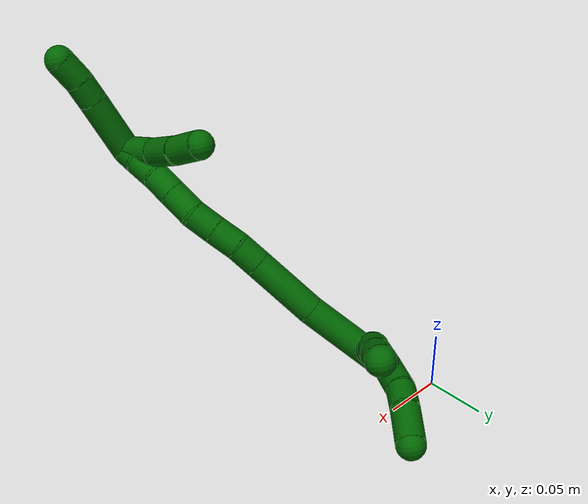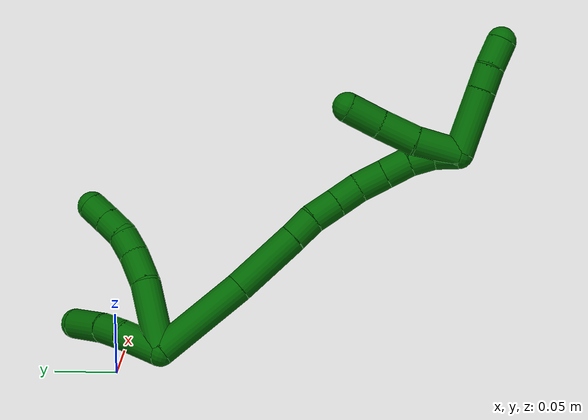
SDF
<sdf version="1.7">
 <world name="default">
  <model name="6">
   <static>0</static>
   <link name="6">
    <collision name="collision-cylinder-e_1_2_8">
     <pose>0.023436 0.002503 0.017914 -0.138827 0.913474 -0.068302</pose>
     <geometry><cylinder><radius>0.0125</radius><length>0.059208</length></cylinder></geometry>
     <surface>
      <friction><ode><mu>1.16</mu><mu2>1.16</mu2><slip1>0</slip1><slip2>0</slip2></ode></friction>
      <contact><ode><kp>1e+06</kp><kd>1</kd><max_vel>0</max_vel><min_depth>0.001</min_depth></ode></contact>
     </surface>
    </collision>
    <visual name="visual-cylinder-e_1_2_8">
     <pose>0.023436 0.002503 0.017914 -0.138827 0.913474 -0.068302</pose>
     <geometry><cylinder><radius>0.0125</radius><length>0.059208</length></cylinder></geometry>
     <material><ambient>0 0.392157 0.003922 1</ambient></material>
    </visual>
    <collision name="collision-cylinder-e_2_8_9">
     <pose>0.059853 0.006663 0.041875 -0.267381 1.12088 -0.168406</pose>
     <geometry><cylinder><radius>0.0125</radius><length>0.028834</length></cylinder></geometry>
     <surface>
      <friction><ode><mu>1.16</mu><mu2>1.16</mu2><slip1>0</slip1><slip2>0</slip2></ode></friction>
      <contact><ode><kp>1e+06</kp><kd>1</kd><max_vel>0</max_vel><min_depth>0.001</min_depth></ode></contact>
     </surface>
    </collision>
    <visual name="visual-cylinder-e_2_8_9">
     <pose>0.059853 0.006663 0.041875 -0.267381 1.12088 -0.168406</pose>
     <geometry><cylinder><radius>0.0125</radius><length>0.028834</length></cylinder></geometry>
     <material><ambient>0 0.392157 0.003922 1</ambient></material>
    </visual>
    <collision name="collision-cylinder-e_3_9_10">
     <pose>0.081287 0.011558 0.052553 -0.610409 0.981405 -0.333528</pose>
     <geometry><cylinder><radius>0.0125</radius><length>0.020333</length></cylinder></geometry>
     <surface>
      <friction><ode><mu>1.16</mu><mu2>1.16</mu2><slip1>0</slip1><slip2>0</slip2></ode></friction>
      <contact><ode><kp>1e+06</kp><kd>1</kd><max_vel>0</max_vel><min_depth>0.001</min_depth></ode></contact>
     </surface>
    </collision>
    <visual name="visual-cylinder-e_3_9_10">
     <pose>0.081287 0.011558 0.052553 -0.610409 0.981405 -0.333528</pose>
     <geometry><cylinder><radius>0.0125</radius><length>0.020333</length></cylinder></geometry>
     <material><ambient>0 0.392157 0.003922 1</ambient></material>
    </visual>
    <collision name="collision-cylinder-e_4_10_11">
     <pose>0.099175 0.018083 0.058629 -1.15633 1.20737 -0.845666</pose>
     <geometry><cylinder><radius>0.0125</radius><length>0.020192</length></cylinder></geometry>
     <surface>
      <friction><ode><mu>1.16</mu><mu2>1.16</mu2><slip1>0</slip1><slip2>0</slip2></ode></friction>
      <contact><ode><kp>1e+06</kp><kd>1</kd><max_vel>0</max_vel><min_depth>0.001</min_depth></ode></contact>
     </surface>
    </collision>
    <visual name="visual-cylinder-e_4_10_11">
     <pose>0.099175 0.018083 0.058629 -1.15633 1.20737 -0.845666</pose>
     <geometry><cylinder><radius>0.0125</radius><length>0.020192</length></cylinder></geometry>
     <material><ambient>0 0.392157 0.003922 1</ambient></material>
    </visual>
    <collision name="collision-cylinder-e_5_11_6">
     <pose>0.118541 0.025139 0.061492 -1.21114 1.18534 -0.872557</pose>
     <geometry><cylinder><radius>0.0125</radius><length>0.021433</length></cylinder></geometry>
     <surface>
      <friction><ode><mu>1.16</mu><mu2>1.16</mu2><slip1>0</slip1><slip2>0</slip2></ode></friction>
      <contact><ode><kp>1e+06</kp><kd>1</kd><max_vel>0</max_vel><min_depth>0.001</min_depth></ode></contact>
     </surface>
    </collision>
    <visual name="visual-cylinder-e_5_11_6">
     <pose>0.118541 0.025139 0.061492 -1.21114 1.18534 -0.872557</pose>
     <geometry><cylinder><radius>0.0125</radius><length>0.021433</length></cylinder></geometry>
     <material><ambient>0 0.392157 0.003922 1</ambient></material>
    </visual>
    <collision name="collision-cylinder-e_1_2_12">
     <pose>0.017037 0.008264 -0.003108 -1.93052 1.09265 -1.44141</pose>
     <geometry><cylinder><radius>0.0125</radius><length>0.038377</length></cylinder></geometry>
     <surface>
      <friction><ode><mu>1.16</mu><mu2>1.16</mu2><slip1>0</slip1><slip2>0</slip2></ode></friction>
      <contact><ode><kp>1e+06</kp><kd>1</kd><max_vel>0</max_vel><min_depth>0.001</min_depth></ode></contact>
     </surface>
    </collision>
    <visual name="visual-cylinder-e_1_2_12">
     <pose>0.017037 0.008264 -0.003108 -1.93052 1.09265 -1.44141</pose>
     <geometry><cylinder><radius>0.0125</radius><length>0.038377</length></cylinder></geometry>
     <material><ambient>0 0.392157 0.003922 1</ambient></material>
    </visual>
    <collision name="collision-cylinder-e_2_12_13">
     <pose>0.045671 0.019673 -0.009819 -2.42397 1.17974 -2.12016</pose>
     <geometry><cylinder><radius>0.0125</radius><length>0.02509</length></cylinder></geometry>
     <surface>
      <friction><ode><mu>1.16</mu><mu2>1.16</mu2><slip1>0</slip1><slip2>0</slip2></ode></friction>
      <contact><ode><kp>1e+06</kp><kd>1</kd><max_vel>0</max_vel><min_depth>0.001</min_depth></ode></contact>
     </surface>
    </collision>
    <visual name="visual-cylinder-e_2_12_13">
     <pose>0.045671 0.019673 -0.009819 -2.42397 1.17974 -2.12016</pose>
     <geometry><cylinder><radius>0.0125</radius><length>0.02509</length></cylinder></geometry>
     <material><ambient>0 0.392157 0.003922 1</ambient></material>
    </visual>
    <collision name="collision-cylinder-e_3_13_5">
     <pose>0.073486 0.026508 -0.020976 -2.68717 1.09247 -2.41476</pose>
     <geometry><cylinder><radius>0.0125</radius><length>0.036532</length></cylinder></geometry>
     <surface>
      <friction><ode><mu>1.16</mu><mu2>1.16</mu2><slip1>0</slip1><slip2>0</slip2></ode></friction>
      <contact><ode><kp>1e+06</kp><kd>1</kd><max_vel>0</max_vel><min_depth>0.001</min_depth></ode></contact>
     </surface>
    </collision>
    <visual name="visual-cylinder-e_3_13_5">
     <pose>0.073486 0.026508 -0.020976 -2.68717 1.09247 -2.41476</pose>
     <geometry><cylinder><radius>0.0125</radius><length>0.036532</length></cylinder></geometry>
     <material><ambient>0 0.392157 0.003922 1</ambient></material>
    </visual>
    <collision name="collision-cylinder-e_1_2_14">
     <pose>0.003173 -0.027527 0.030274 0.737909 0.077403 0.029941</pose>
     <geometry><cylinder><radius>0.0125</radius><length>0.08208</length></cylinder></geometry>
     <surface>
      <friction><ode><mu>1.16</mu><mu2>1.16</mu2><slip1>0</slip1><slip2>0</slip2></ode></friction>
      <contact><ode><kp>1e+06</kp><kd>1</kd><max_vel>0</max_vel><min_depth>0.001</min_depth></ode></contact>
     </surface>
    </collision>
    <visual name="visual-cylinder-e_1_2_14">
     <pose>0.003173 -0.027527 0.030274 0.737909 0.077403 0.029941</pose>
     <geometry><cylinder><radius>0.0125</radius><length>0.08208</length></cylinder></geometry>
     <material><ambient>0 0.392157 0.003922 1</ambient></material>
    </visual>
    <collision name="collision-cylinder-e_2_14_15">
     <pose>0.008308 -0.073294 0.0844 0.652853 0.065214 0.022084</pose>
     <geometry><cylinder><radius>0.0125</radius><length>0.060185</length></cylinder></geometry>
     <surface>
      <friction><ode><mu>1.16</mu><mu2>1.16</mu2><slip1>0</slip1><slip2>0</slip2></ode></friction>
      <contact><ode><kp>1e+06</kp><kd>1</kd><max_vel>0</max_vel><min_depth>0.001</min_depth></ode></contact>
     </surface>
    </collision>
    <visual name="visual-cylinder-e_2_14_15">
     <pose>0.008308 -0.073294 0.0844 0.652853 0.065214 0.022084</pose>
     <geometry><cylinder><radius>0.0125</radius><length>0.060185</length></cylinder></geometry>
     <material><ambient>0 0.392157 0.003922 1</ambient></material>
    </visual>
    <collision name="collision-cylinder-e_3_15_16">
     <pose>0.011451 -0.098116 0.117148 0.636972 0.106387 0.035106</pose>
     <geometry><cylinder><radius>0.0125</radius><length>0.022254</length></cylinder></geometry>
     <surface>
      <friction><ode><mu>1.16</mu><mu2>1.16</mu2><slip1>0</slip1><slip2>0</slip2></ode></friction>
      <contact><ode><kp>1e+06</kp><kd>1</kd><max_vel>0</max_vel><min_depth>0.001</min_depth></ode></contact>
     </surface>
    </collision>
    <visual name="visual-cylinder-e_3_15_16">
     <pose>0.011451 -0.098116 0.117148 0.636972 0.106387 0.035106</pose>
     <geometry><cylinder><radius>0.0125</radius><length>0.022254</length></cylinder></geometry>
     <material><ambient>0 0.392157 0.003922 1</ambient></material>
    </visual>
    <collision name="collision-cylinder-e_4_16_17">
     <pose>0.012716 -0.113214 0.134336 0.798731 0.007093 0.002994</pose>
     <geometry><cylinder><radius>0.0125</radius><length>0.023777</length></cylinder></geometry>
     <surface>
      <friction><ode><mu>1.16</mu><mu2>1.16</mu2><slip1>0</slip1><slip2>0</slip2></ode></friction>
      <contact><ode><kp>1e+06</kp><kd>1</kd><max_vel>0</max_vel><min_depth>0.001</min_depth></ode></contact>
     </surface>
    </collision>
    <visual name="visual-cylinder-e_4_16_17">
     <pose>0.012716 -0.113214 0.134336 0.798731 0.007093 0.002994</pose>
     <geometry><cylinder><radius>0.0125</radius><length>0.023777</length></cylinder></geometry>
     <material><ambient>0 0.392157 0.003922 1</ambient></material>
    </visual>
    <collision name="collision-cylinder-e_5_17_18">
     <pose>0.012766 -0.129774 0.150796 0.777773 -0.003067 -0.001257</pose>
     <geometry><cylinder><radius>0.0125</radius><length>0.022924</length></cylinder></geometry>
     <surface>
      <friction><ode><mu>1.16</mu><mu2>1.16</mu2><slip1>0</slip1><slip2>0</slip2></ode></friction>
      <contact><ode><kp>1e+06</kp><kd>1</kd><max_vel>0</max_vel><min_depth>0.001</min_depth></ode></contact>
     </surface>
    </collision>
    <visual name="visual-cylinder-e_5_17_18">
     <pose>0.012766 -0.129774 0.150796 0.777773 -0.003067 -0.001257</pose>
     <geometry><cylinder><radius>0.0125</radius><length>0.022924</length></cylinder></geometry>
     <material><ambient>0 0.392157 0.003922 1</ambient></material>
    </visual>
    <collision name="collision-cylinder-e_6_18_19">
     <pose>0.009555 -0.145929 0.167954 0.73401 -0.256432 -0.099041</pose>
     <geometry><cylinder><radius>0.0125</radius><length>0.025039</length></cylinder></geometry>
     <surface>
      <friction><ode><mu>1.16</mu><mu2>1.16</mu2><slip1>0</slip1><slip2>0</slip2></ode></friction>
      <contact><ode><kp>1e+06</kp><kd>1</kd><max_vel>0</max_vel><min_depth>0.001</min_depth></ode></contact>
     </surface>
    </collision>
    <visual name="visual-cylinder-e_6_18_19">
     <pose>0.009555 -0.145929 0.167954 0.73401 -0.256432 -0.099041</pose>
     <geometry><cylinder><radius>0.0125</radius><length>0.025039</length></cylinder></geometry>
     <material><ambient>0 0.392157 0.003922 1</ambient></material>
    </visual>
    <collision name="collision-cylinder-e_7_19_20">
     <pose>0.003554 -0.16135 0.185076 0.732249 -0.25296 -0.097431</pose>
     <geometry><cylinder><radius>0.0125</radius><length>0.022582</length></cylinder></geometry>
     <surface>
      <friction><ode><mu>1.16</mu><mu2>1.16</mu2><slip1>0</slip1><slip2>0</slip2></ode></friction>
      <contact><ode><kp>1e+06</kp><kd>1</kd><max_vel>0</max_vel><min_depth>0.001</min_depth></ode></contact>
     </surface>
    </collision>
    <visual name="visual-cylinder-e_7_19_20">
     <pose>0.003554 -0.16135 0.185076 0.732249 -0.25296 -0.097431</pose>
     <geometry><cylinder><radius>0.0125</radius><length>0.022582</length></cylinder></geometry>
     <material><ambient>0 0.392157 0.003922 1</ambient></material>
    </visual>
    <collision name="collision-cylinder-e_8_20_21">
     <pose>-0.003239 -0.176222 0.19935 0.888538 -0.386579 -0.185804</pose>
     <geometry><cylinder><radius>0.0125</radius><length>0.021043</length></cylinder></geometry>
     <surface>
      <friction><ode><mu>1.16</mu><mu2>1.16</mu2><slip1>0</slip1><slip2>0</slip2></ode></friction>
      <contact><ode><kp>1e+06</kp><kd>1</kd><max_vel>0</max_vel><min_depth>0.001</min_depth></ode></contact>
     </surface>
    </collision>
    <visual name="visual-cylinder-e_8_20_21">
     <pose>-0.003239 -0.176222 0.19935 0.888538 -0.386579 -0.185804</pose>
     <geometry><cylinder><radius>0.0125</radius><length>0.021043</length></cylinder></geometry>
     <material><ambient>0 0.392157 0.003922 1</ambient></material>
    </visual>
    <collision name="collision-cylinder-e_9_21_1">
     <pose>-0.013137 -0.190803 0.209585 1.04314 -0.630706 -0.370643</pose>
     <geometry><cylinder><radius>0.0125</radius><length>0.020116</length></cylinder></geometry>
     <surface>
      <friction><ode><mu>1.16</mu><mu2>1.16</mu2><slip1>0</slip1><slip2>0</slip2></ode></friction>
      <contact><ode><kp>1e+06</kp><kd>1</kd><max_vel>0</max_vel><min_depth>0.001</min_depth></ode></contact>
     </surface>
    </collision>
    <visual name="visual-cylinder-e_9_21_1">
     <pose>-0.013137 -0.190803 0.209585 1.04314 -0.630706 -0.370643</pose>
     <geometry><cylinder><radius>0.0125</radius><length>0.020116</length></cylinder></geometry>
     <material><ambient>0 0.392157 0.003922 1</ambient></material>
    </visual>
    <collision name="collision-cylinder-e_1_1_22">
     <pose>-0.010299 -0.203873 0.238945 0.235053 0.32548 0.038768</pose>
     <geometry><cylinder><radius>0.0125</radius><length>0.05485</length></cylinder></geometry>
     <surface>
      <friction><ode><mu>1.16</mu><mu2>1.16</mu2><slip1>0</slip1><slip2>0</slip2></ode></friction>
      <contact><ode><kp>1e+06</kp><kd>1</kd><max_vel>0</max_vel><min_depth>0.001</min_depth></ode></contact>
     </surface>
    </collision>
    <visual name="visual-cylinder-e_1_1_22">
     <pose>-0.010299 -0.203873 0.238945 0.235053 0.32548 0.038768</pose>
     <geometry><cylinder><radius>0.0125</radius><length>0.05485</length></cylinder></geometry>
     <material><ambient>0 0.392157 0.003922 1</ambient></material>
    </visual>
    <collision name="collision-cylinder-e_2_22_23">
     <pose>0.001882 -0.212321 0.273751 0.246257 0.333965 0.041712</pose>
     <geometry><cylinder><radius>0.0125</radius><length>0.020815</length></cylinder></geometry>
     <surface>
      <friction><ode><mu>1.16</mu><mu2>1.16</mu2><slip1>0</slip1><slip2>0</slip2></ode></friction>
      <contact><ode><kp>1e+06</kp><kd>1</kd><max_vel>0</max_vel><min_depth>0.001</min_depth></ode></contact>
     </surface>
    </collision>
    <visual name="visual-cylinder-e_2_22_23">
     <pose>0.001882 -0.212321 0.273751 0.246257 0.333965 0.041712</pose>
     <geometry><cylinder><radius>0.0125</radius><length>0.020815</length></cylinder></geometry>
     <material><ambient>0 0.392157 0.003922 1</ambient></material>
    </visual>
    <collision name="collision-cylinder-e_3_23_4">
     <pose>0.009663 -0.218979 0.293813 0.384611 0.367262 0.072293</pose>
     <geometry><cylinder><radius>0.0125</radius><length>0.024336</length></cylinder></geometry>
     <surface>
      <friction><ode><mu>1.16</mu><mu2>1.16</mu2><slip1>0</slip1><slip2>0</slip2></ode></friction>
      <contact><ode><kp>1e+06</kp><kd>1</kd><max_vel>0</max_vel><min_depth>0.001</min_depth></ode></contact>
     </surface>
    </collision>
    <visual name="visual-cylinder-e_3_23_4">
     <pose>0.009663 -0.218979 0.293813 0.384611 0.367262 0.072293</pose>
     <geometry><cylinder><radius>0.0125</radius><length>0.024336</length></cylinder></geometry>
     <material><ambient>0 0.392157 0.003922 1</ambient></material>
    </visual>
    <collision name="collision-cylinder-e_1_1_24">
     <pose>-0.010261 -0.181493 0.213059 -1.6085 0.494359 -0.512553</pose>
     <geometry><cylinder><radius>0.0125</radius><length>0.037123</length></cylinder></geometry>
     <surface>
      <friction><ode><mu>1.16</mu><mu2>1.16</mu2><slip1>0</slip1><slip2>0</slip2></ode></friction>
      <contact><ode><kp>1e+06</kp><kd>1</kd><max_vel>0</max_vel><min_depth>0.001</min_depth></ode></contact>
     </surface>
    </collision>
    <visual name="visual-cylinder-e_1_1_24">
     <pose>-0.010261 -0.181493 0.213059 -1.6085 0.494359 -0.512553</pose>
     <geometry><cylinder><radius>0.0125</radius><length>0.037123</length></cylinder></geometry>
     <material><ambient>0 0.392157 0.003922 1</ambient></material>
    </visual>
    <collision name="collision-cylinder-e_2_24_25">
     <pose>0.007519 -0.15169 0.214046 -1.4524 0.584244 -0.521962</pose>
     <geometry><cylinder><radius>0.0125</radius><length>0.032537</length></cylinder></geometry>
     <surface>
      <friction><ode><mu>1.16</mu><mu2>1.16</mu2><slip1>0</slip1><slip2>0</slip2></ode></friction>
      <contact><ode><kp>1e+06</kp><kd>1</kd><max_vel>0</max_vel><min_depth>0.001</min_depth></ode></contact>
     </surface>
    </collision>
    <visual name="visual-cylinder-e_2_24_25">
     <pose>0.007519 -0.15169 0.214046 -1.4524 0.584244 -0.521962</pose>
     <geometry><cylinder><radius>0.0125</radius><length>0.032537</length></cylinder></geometry>
     <material><ambient>0 0.392157 0.003922 1</ambient></material>
    </visual>
    <collision name="collision-cylinder-e_3_25_3">
     <pose>0.023372 -0.12493 0.218159 -1.38405 0.47071 -0.392355</pose>
     <geometry><cylinder><radius>0.0125</radius><length>0.030339</length></cylinder></geometry>
     <surface>
      <friction><ode><mu>1.16</mu><mu2>1.16</mu2><slip1>0</slip1><slip2>0</slip2></ode></friction>
      <contact><ode><kp>1e+06</kp><kd>1</kd><max_vel>0</max_vel><min_depth>0.001</min_depth></ode></contact>
     </surface>
    </collision>
    <visual name="visual-cylinder-e_3_25_3">
     <pose>0.023372 -0.12493 0.218159 -1.38405 0.47071 -0.392355</pose>
     <geometry><cylinder><radius>0.0125</radius><length>0.030339</length></cylinder></geometry>
     <material><ambient>0 0.392157 0.003922 1</ambient></material>
    </visual>
    <collision name="collision-sphere-3">
     <pose>0.030252 -0.111646 0.220669 0 -0 0</pose>
     <geometry><sphere><radius>0.0125</radius></sphere></geometry>
     <surface>
      <friction><ode><mu>1.16</mu><mu2>1.16</mu2><slip1>0</slip1><slip2>0</slip2></ode></friction>
      <contact><ode><kp>1e+06</kp><kd>1</kd><max_vel>0</max_vel><min_depth>0.001</min_depth></ode></contact>
     </surface>
    </collision>
    <visual name="visual-sphere-3">
     <pose>0.030252 -0.111646 0.220669 0 -0 0</pose>
     <geometry><sphere><radius>0.0125</radius></sphere></geometry>
     <material><ambient>0 0.392157 0.003922 1</ambient></material>
    </visual>
    <collision name="collision-sphere-25">
     <pose>0.016492 -0.138215 0.215648 0 -0 0</pose>
     <geometry><sphere><radius>0.0125</radius></sphere></geometry>
     <surface>
      <friction><ode><mu>1.16</mu><mu2>1.16</mu2><slip1>0</slip1><slip2>0</slip2></ode></friction>
      <contact><ode><kp>1e+06</kp><kd>1</kd><max_vel>0</max_vel><min_depth>0.001</min_depth></ode></contact>
     </surface>
    </collision>
    <visual name="visual-sphere-25">
     <pose>0.016492 -0.138215 0.215648 0 -0 0</pose>
     <geometry><sphere><radius>0.0125</radius></sphere></geometry>
     <material><ambient>0 0.392157 0.003922 1</ambient></material>
    </visual>
    <collision name="collision-sphere-24">
     <pose>-0.001454 -0.165166 0.212443 0 -0 0</pose>
     <geometry><sphere><radius>0.0125</radius></sphere></geometry>
     <surface>
      <friction><ode><mu>1.16</mu><mu2>1.16</mu2><slip1>0</slip1><slip2>0</slip2></ode></friction>
      <contact><ode><kp>1e+06</kp><kd>1</kd><max_vel>0</max_vel><min_depth>0.001</min_depth></ode></contact>
     </surface>
    </collision>
    <visual name="visual-sphere-24">
     <pose>-0.001454 -0.165166 0.212443 0 -0 0</pose>
     <geometry><sphere><radius>0.0125</radius></sphere></geometry>
     <material><ambient>0 0.392157 0.003922 1</ambient></material>
    </visual>
    <collision name="collision-sphere-4">
     <pose>0.014032 -0.22324 0.30434 0 -0 0</pose>
     <geometry><sphere><radius>0.0125</radius></sphere></geometry>
     <surface>
      <friction><ode><mu>1.16</mu><mu2>1.16</mu2><slip1>0</slip1><slip2>0</slip2></ode></friction>
      <contact><ode><kp>1e+06</kp><kd>1</kd><max_vel>0</max_vel><min_depth>0.001</min_depth></ode></contact>
     </surface>
    </collision>
    <visual name="visual-sphere-4">
     <pose>0.014032 -0.22324 0.30434 0 -0 0</pose>
     <geometry><sphere><radius>0.0125</radius></sphere></geometry>
     <material><ambient>0 0.392157 0.003922 1</ambient></material>
    </visual>
    <collision name="collision-sphere-23">
     <pose>0.005294 -0.214718 0.283287 0 -0 0</pose>
     <geometry><sphere><radius>0.0125</radius></sphere></geometry>
     <surface>
      <friction><ode><mu>1.16</mu><mu2>1.16</mu2><slip1>0</slip1><slip2>0</slip2></ode></friction>
      <contact><ode><kp>1e+06</kp><kd>1</kd><max_vel>0</max_vel><min_depth>0.001</min_depth></ode></contact>
     </surface>
    </collision>
    <visual name="visual-sphere-23">
     <pose>0.005294 -0.214718 0.283287 0 -0 0</pose>
     <geometry><sphere><radius>0.0125</radius></sphere></geometry>
     <material><ambient>0 0.392157 0.003922 1</ambient></material>
    </visual>
    <collision name="collision-sphere-22">
     <pose>-0.001529 -0.209925 0.264215 0 -0 0</pose>
     <geometry><sphere><radius>0.0125</radius></sphere></geometry>
     <surface>
      <friction><ode><mu>1.16</mu><mu2>1.16</mu2><slip1>0</slip1><slip2>0</slip2></ode></friction>
      <contact><ode><kp>1e+06</kp><kd>1</kd><max_vel>0</max_vel><min_depth>0.001</min_depth></ode></contact>
     </surface>
    </collision>
    <visual name="visual-sphere-22">
     <pose>-0.001529 -0.209925 0.264215 0 -0 0</pose>
     <geometry><sphere><radius>0.0125</radius></sphere></geometry>
     <material><ambient>0 0.392157 0.003922 1</ambient></material>
    </visual>
    <collision name="collision-sphere-1">
     <pose>-0.019068 -0.197821 0.213674 0 -0 0</pose>
     <geometry><sphere><radius>0.0125</radius></sphere></geometry>
     <surface>
      <friction><ode><mu>1.16</mu><mu2>1.16</mu2><slip1>0</slip1><slip2>0</slip2></ode></friction>
      <contact><ode><kp>1e+06</kp><kd>1</kd><max_vel>0</max_vel><min_depth>0.001</min_depth></ode></contact>
     </surface>
    </collision>
    <visual name="visual-sphere-1">
     <pose>-0.019068 -0.197821 0.213674 0 -0 0</pose>
     <geometry><sphere><radius>0.0125</radius></sphere></geometry>
     <material><ambient>0 0.392157 0.003922 1</ambient></material>
    </visual>
    <collision name="collision-sphere-21">
     <pose>-0.007206 -0.183785 0.205495 0 -0 0</pose>
     <geometry><sphere><radius>0.0125</radius></sphere></geometry>
     <surface>
      <friction><ode><mu>1.16</mu><mu2>1.16</mu2><slip1>0</slip1><slip2>0</slip2></ode></friction>
      <contact><ode><kp>1e+06</kp><kd>1</kd><max_vel>0</max_vel><min_depth>0.001</min_depth></ode></contact>
     </surface>
    </collision>
    <visual name="visual-sphere-21">
     <pose>-0.007206 -0.183785 0.205495 0 -0 0</pose>
     <geometry><sphere><radius>0.0125</radius></sphere></geometry>
     <material><ambient>0 0.392157 0.003922 1</ambient></material>
    </visual>
    <collision name="collision-sphere-6">
     <pose>0.128471 0.028911 0.06291 0 -0 0</pose>
     <geometry><sphere><radius>0.0125</radius></sphere></geometry>
     <surface>
      <friction><ode><mu>1.16</mu><mu2>1.16</mu2><slip1>0</slip1><slip2>0</slip2></ode></friction>
      <contact><ode><kp>1e+06</kp><kd>1</kd><max_vel>0</max_vel><min_depth>0.001</min_depth></ode></contact>
     </surface>
    </collision>
    <visual name="visual-sphere-6">
     <pose>0.128471 0.028911 0.06291 0 -0 0</pose>
     <geometry><sphere><radius>0.0125</radius></sphere></geometry>
     <material><ambient>0 0.392157 0.003922 1</ambient></material>
    </visual>
    <collision name="collision-sphere-11">
     <pose>0.108611 0.021368 0.060074 0 -0 0</pose>
     <geometry><sphere><radius>0.0125</radius></sphere></geometry>
     <surface>
      <friction><ode><mu>1.16</mu><mu2>1.16</mu2><slip1>0</slip1><slip2>0</slip2></ode></friction>
      <contact><ode><kp>1e+06</kp><kd>1</kd><max_vel>0</max_vel><min_depth>0.001</min_depth></ode></contact>
     </surface>
    </collision>
    <visual name="visual-sphere-11">
     <pose>0.108611 0.021368 0.060074 0 -0 0</pose>
     <geometry><sphere><radius>0.0125</radius></sphere></geometry>
     <material><ambient>0 0.392157 0.003922 1</ambient></material>
    </visual>
    <collision name="collision-sphere-10">
     <pose>0.089738 0.014798 0.057183 0 -0 0</pose>
     <geometry><sphere><radius>0.0125</radius></sphere></geometry>
     <surface>
      <friction><ode><mu>1.16</mu><mu2>1.16</mu2><slip1>0</slip1><slip2>0</slip2></ode></friction>
      <contact><ode><kp>1e+06</kp><kd>1</kd><max_vel>0</max_vel><min_depth>0.001</min_depth></ode></contact>
     </surface>
    </collision>
    <visual name="visual-sphere-10">
     <pose>0.089738 0.014798 0.057183 0 -0 0</pose>
     <geometry><sphere><radius>0.0125</radius></sphere></geometry>
     <material><ambient>0 0.392157 0.003922 1</ambient></material>
    </visual>
    <collision name="collision-sphere-9">
     <pose>0.072836 0.008319 0.047922 0 -0 0</pose>
     <geometry><sphere><radius>0.0125</radius></sphere></geometry>
     <surface>
      <friction><ode><mu>1.16</mu><mu2>1.16</mu2><slip1>0</slip1><slip2>0</slip2></ode></friction>
      <contact><ode><kp>1e+06</kp><kd>1</kd><max_vel>0</max_vel><min_depth>0.001</min_depth></ode></contact>
     </surface>
    </collision>
    <visual name="visual-sphere-9">
     <pose>0.072836 0.008319 0.047922 0 -0 0</pose>
     <geometry><sphere><radius>0.0125</radius></sphere></geometry>
     <material><ambient>0 0.392157 0.003922 1</ambient></material>
    </visual>
    <collision name="collision-sphere-2">
     <geometry><sphere><radius>0.0125</radius></sphere></geometry>
     <surface>
      <friction><ode><mu>1.16</mu><mu2>1.16</mu2><slip1>0</slip1><slip2>0</slip2></ode></friction>
      <contact><ode><kp>1e+06</kp><kd>1</kd><max_vel>0</max_vel><min_depth>0.001</min_depth></ode></contact>
     </surface>
    </collision>
    <visual name="visual-sphere-2">
     <geometry><sphere><radius>0.0125</radius></sphere></geometry>
     <material><ambient>0 0.392157 0.003922 1</ambient></material>
    </visual>
    <collision name="collision-sphere-19">
     <pose>0.00638 -0.154041 0.176946 0 -0 0</pose>
     <geometry><sphere><radius>0.0125</radius></sphere></geometry>
     <surface>
      <friction><ode><mu>1.16</mu><mu2>1.16</mu2><slip1>0</slip1><slip2>0</slip2></ode></friction>
      <contact><ode><kp>1e+06</kp><kd>1</kd><max_vel>0</max_vel><min_depth>0.001</min_depth></ode></contact>
     </surface>
    </collision>
    <visual name="visual-sphere-19">
     <pose>0.00638 -0.154041 0.176946 0 -0 0</pose>
     <geometry><sphere><radius>0.0125</radius></sphere></geometry>
     <material><ambient>0 0.392157 0.003922 1</ambient></material>
    </visual>
    <collision name="collision-sphere-8">
     <pose>0.046871 0.005006 0.035828 0 -0 0</pose>
     <geometry><sphere><radius>0.0125</radius></sphere></geometry>
     <surface>
      <friction><ode><mu>1.16</mu><mu2>1.16</mu2><slip1>0</slip1><slip2>0</slip2></ode></friction>
      <contact><ode><kp>1e+06</kp><kd>1</kd><max_vel>0</max_vel><min_depth>0.001</min_depth></ode></contact>
     </surface>
    </collision>
    <visual name="visual-sphere-8">
     <pose>0.046871 0.005006 0.035828 0 -0 0</pose>
     <geometry><sphere><radius>0.0125</radius></sphere></geometry>
     <material><ambient>0 0.392157 0.003922 1</ambient></material>
    </visual>
    <collision name="collision-sphere-12">
     <pose>0.034073 0.016529 -0.006216 0 -0 0</pose>
     <geometry><sphere><radius>0.0125</radius></sphere></geometry>
     <surface>
      <friction><ode><mu>1.16</mu><mu2>1.16</mu2><slip1>0</slip1><slip2>0</slip2></ode></friction>
      <contact><ode><kp>1e+06</kp><kd>1</kd><max_vel>0</max_vel><min_depth>0.001</min_depth></ode></contact>
     </surface>
    </collision>
    <visual name="visual-sphere-12">
     <pose>0.034073 0.016529 -0.006216 0 -0 0</pose>
     <geometry><sphere><radius>0.0125</radius></sphere></geometry>
     <material><ambient>0 0.392157 0.003922 1</ambient></material>
    </visual>
    <collision name="collision-sphere-13">
     <pose>0.05727 0.022818 -0.013421 0 -0 0</pose>
     <geometry><sphere><radius>0.0125</radius></sphere></geometry>
     <surface>
      <friction><ode><mu>1.16</mu><mu2>1.16</mu2><slip1>0</slip1><slip2>0</slip2></ode></friction>
      <contact><ode><kp>1e+06</kp><kd>1</kd><max_vel>0</max_vel><min_depth>0.001</min_depth></ode></contact>
     </surface>
    </collision>
    <visual name="visual-sphere-13">
     <pose>0.05727 0.022818 -0.013421 0 -0 0</pose>
     <geometry><sphere><radius>0.0125</radius></sphere></geometry>
     <material><ambient>0 0.392157 0.003922 1</ambient></material>
    </visual>
    <collision name="collision-sphere-5">
     <pose>0.089702 0.030199 -0.02853 0 -0 0</pose>
     <geometry><sphere><radius>0.0125</radius></sphere></geometry>
     <surface>
      <friction><ode><mu>1.16</mu><mu2>1.16</mu2><slip1>0</slip1><slip2>0</slip2></ode></friction>
      <contact><ode><kp>1e+06</kp><kd>1</kd><max_vel>0</max_vel><min_depth>0.001</min_depth></ode></contact>
     </surface>
    </collision>
    <visual name="visual-sphere-5">
     <pose>0.089702 0.030199 -0.02853 0 -0 0</pose>
     <geometry><sphere><radius>0.0125</radius></sphere></geometry>
     <material><ambient>0 0.392157 0.003922 1</ambient></material>
    </visual>
    <collision name="collision-sphere-14">
     <pose>0.006347 -0.055053 0.060547 0 -0 0</pose>
     <geometry><sphere><radius>0.0125</radius></sphere></geometry>
     <surface>
      <friction><ode><mu>1.16</mu><mu2>1.16</mu2><slip1>0</slip1><slip2>0</slip2></ode></friction>
      <contact><ode><kp>1e+06</kp><kd>1</kd><max_vel>0</max_vel><min_depth>0.001</min_depth></ode></contact>
     </surface>
    </collision>
    <visual name="visual-sphere-14">
     <pose>0.006347 -0.055053 0.060547 0 -0 0</pose>
     <geometry><sphere><radius>0.0125</radius></sphere></geometry>
     <material><ambient>0 0.392157 0.003922 1</ambient></material>
    </visual>
    <collision name="collision-sphere-15">
     <pose>0.010269 -0.091535 0.108254 0 -0 0</pose>
     <geometry><sphere><radius>0.0125</radius></sphere></geometry>
     <surface>
      <friction><ode><mu>1.16</mu><mu2>1.16</mu2><slip1>0</slip1><slip2>0</slip2></ode></friction>
      <contact><ode><kp>1e+06</kp><kd>1</kd><max_vel>0</max_vel><min_depth>0.001</min_depth></ode></contact>
     </surface>
    </collision>
    <visual name="visual-sphere-15">
     <pose>0.010269 -0.091535 0.108254 0 -0 0</pose>
     <geometry><sphere><radius>0.0125</radius></sphere></geometry>
     <material><ambient>0 0.392157 0.003922 1</ambient></material>
    </visual>
    <collision name="collision-sphere-16">
     <pose>0.012632 -0.104696 0.126043 0 -0 0</pose>
     <geometry><sphere><radius>0.0125</radius></sphere></geometry>
     <surface>
      <friction><ode><mu>1.16</mu><mu2>1.16</mu2><slip1>0</slip1><slip2>0</slip2></ode></friction>
      <contact><ode><kp>1e+06</kp><kd>1</kd><max_vel>0</max_vel><min_depth>0.001</min_depth></ode></contact>
     </surface>
    </collision>
    <visual name="visual-sphere-16">
     <pose>0.012632 -0.104696 0.126043 0 -0 0</pose>
     <geometry><sphere><radius>0.0125</radius></sphere></geometry>
     <material><ambient>0 0.392157 0.003922 1</ambient></material>
    </visual>
    <collision name="collision-sphere-17">
     <pose>0.012801 -0.121732 0.14263 0 -0 0</pose>
     <geometry><sphere><radius>0.0125</radius></sphere></geometry>
     <surface>
      <friction><ode><mu>1.16</mu><mu2>1.16</mu2><slip1>0</slip1><slip2>0</slip2></ode></friction>
      <contact><ode><kp>1e+06</kp><kd>1</kd><max_vel>0</max_vel><min_depth>0.001</min_depth></ode></contact>
     </surface>
    </collision>
    <visual name="visual-sphere-17">
     <pose>0.012801 -0.121732 0.14263 0 -0 0</pose>
     <geometry><sphere><radius>0.0125</radius></sphere></geometry>
     <material><ambient>0 0.392157 0.003922 1</ambient></material>
    </visual>
    <collision name="collision-sphere-18">
     <pose>0.01273 -0.137817 0.158962 0 -0 0</pose>
     <geometry><sphere><radius>0.0125</radius></sphere></geometry>
     <surface>
      <friction><ode><mu>1.16</mu><mu2>1.16</mu2><slip1>0</slip1><slip2>0</slip2></ode></friction>
      <contact><ode><kp>1e+06</kp><kd>1</kd><max_vel>0</max_vel><min_depth>0.001</min_depth></ode></contact>
     </surface>
    </collision>
    <visual name="visual-sphere-18">
     <pose>0.01273 -0.137817 0.158962 0 -0 0</pose>
     <geometry><sphere><radius>0.0125</radius></sphere></geometry>
     <material><ambient>0 0.392157 0.003922 1</ambient></material>
    </visual>
    <collision name="collision-sphere-20">
     <pose>0.000728 -0.168658 0.193205 0 -0 0</pose>
     <geometry><sphere><radius>0.0125</radius></sphere></geometry>
     <surface>
      <friction><ode><mu>1.16</mu><mu2>1.16</mu2><slip1>0</slip1><slip2>0</slip2></ode></friction>
      <contact><ode><kp>1e+06</kp><kd>1</kd><max_vel>0</max_vel><min_depth>0.001</min_depth></ode></contact>
     </surface>
    </collision>
    <visual name="visual-sphere-20">
     <pose>0.000728 -0.168658 0.193205 0 -0 0</pose>
     <geometry><sphere><radius>0.0125</radius></sphere></geometry>
     <material><ambient>0 0.392157 0.003922 1</ambient></material>
    </visual>
    <inertial>
     <pose>0.020898 -0.083334 0.114362 0 -0 0</pose>
     <mass>0.75</mass>
     <inertia>
      <ixx>0.000134</ixx>
      <ixy>0</ixy>
      <ixz>0</ixz>
      <iyy>0.000107</iyy>
      <iyz>0</iyz>
      <izz>1.6e-05</izz>
     </inertia>
    </inertial>
   </link>
   <pose>0.020973 -0.032855 0.011289 0.267118 -0.210004 0.52524</pose>
  </model>
 </world>
</sdf>
